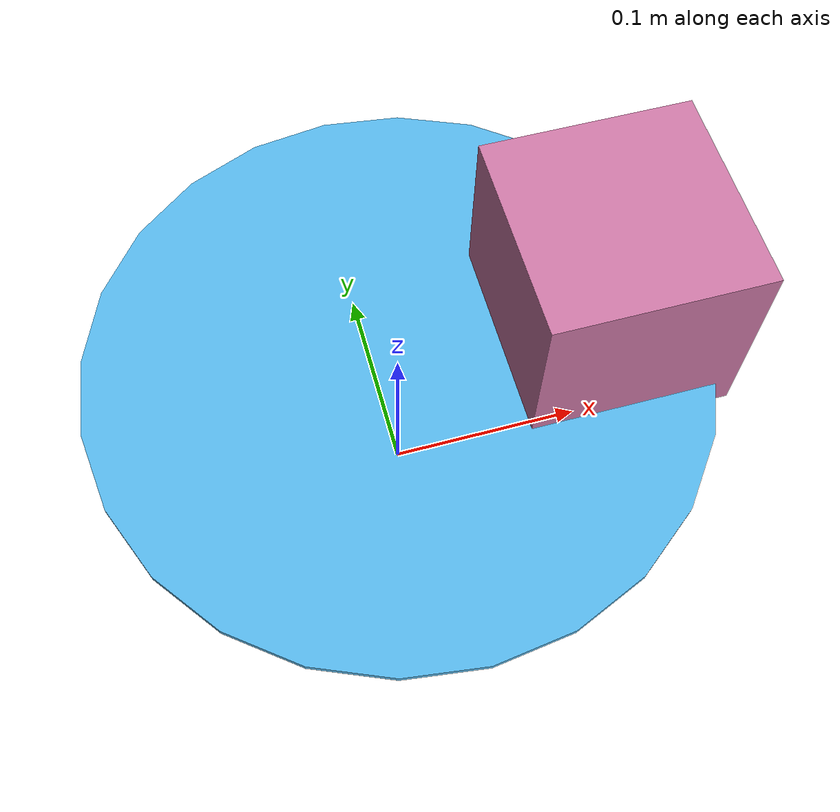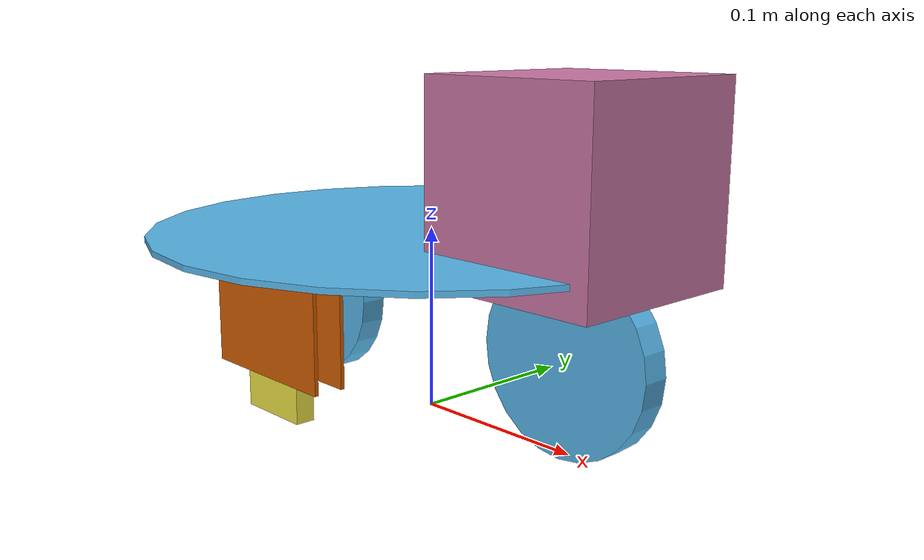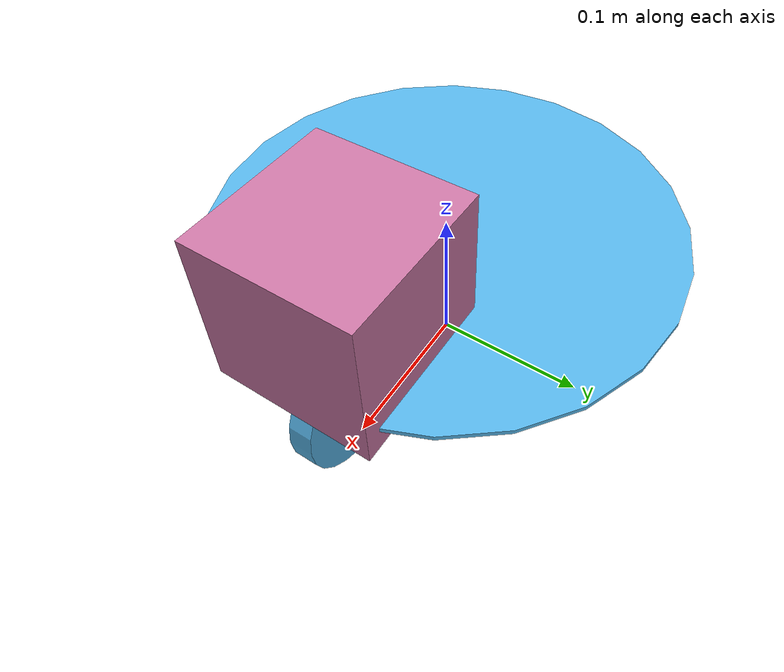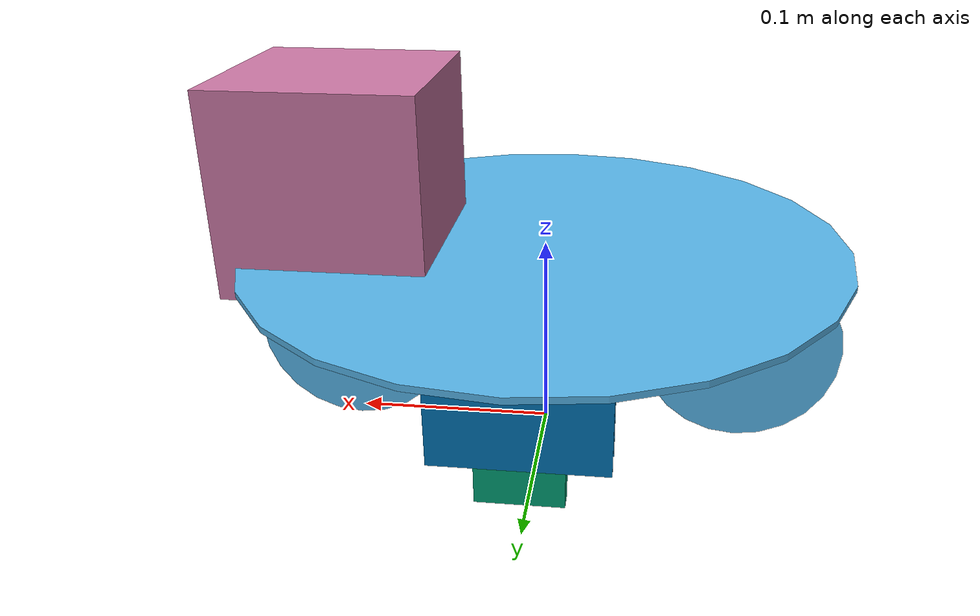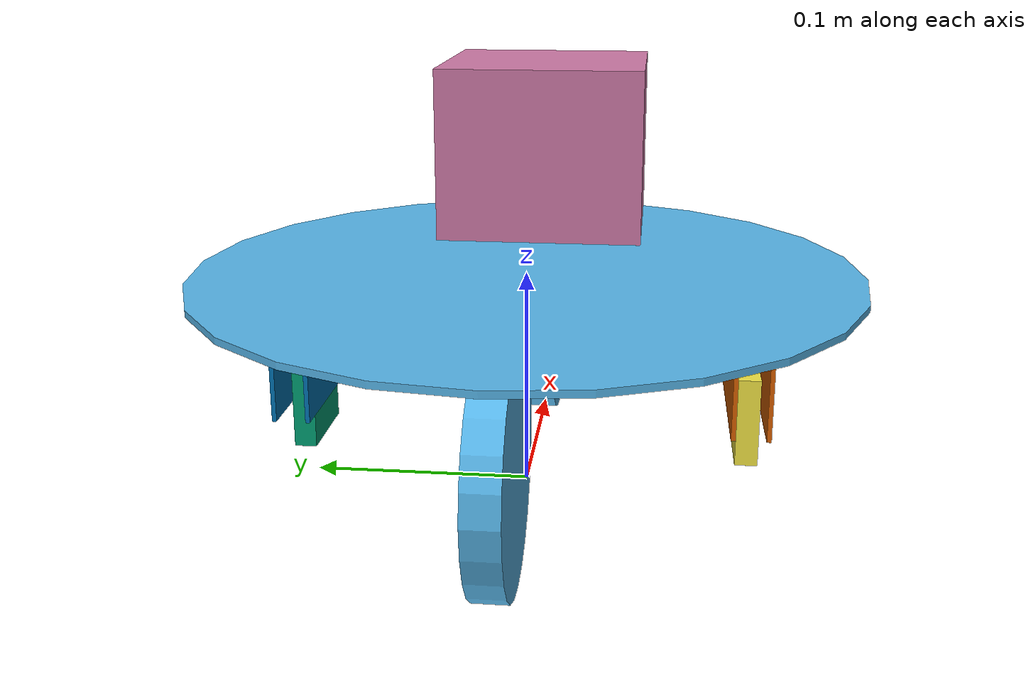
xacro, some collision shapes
<?xml version="1.0"?>
<robot name="bookle" xmlns:xacro="http://www.ros.org/wiki/xacro">

	<!-- Constants for robot dimensions -->
	<xacro:property name="PI" value="3.1415926535897931"/>

	<!-- Import all Gazebo-customization elements, including Gazebo colors -->
	<xacro:include filename="$(find bookle_description)/urdf/bookle.gazebo" />

	<link name="base_footprint">
		<collision name="base_footprint_collision">
			<origin xyz="0 0 0"  rpy="0 0 0" />
			<geometry>
				<box size="0.001 0.001 0.001" />
			</geometry>
		</collision>

		<visual name="base_footprint_visual">
			<origin xyz="0 0 0" rpy="0 0 0" />
			<geometry>
				<box size="0.001 0.001 0.001" />
			</geometry>
		</visual>

	</link>

	<link name="base_link">
		<collision name="base_link_collision">
			<origin xyz="0 0 0.1" rpy="0 0 0" />
			<geometry>
				<cylinder radius="0.15" length="0.003" />
			</geometry>
		</collision>

		<visual name="base_link_visual">
			<origin xyz="0 0 0.1" rpy="0 0 0" />
			<geometry>
				<cylinder radius="0.15" length="0.003" />
			</geometry>
		</visual>

		<collision name="front_caster_collision">
			<origin xyz="0.1 0 0.05" rpy="0 1.5707 1.5707" />
			<geometry>
				<cylinder radius="0.05" length="0.015" />
			</geometry>
		</collision>

		<visual name="front_caster_visual">
			<origin xyz="0.1 0 0.05" rpy="0 1.5707 1.5707" />
			<geometry>
				<cylinder radius="0.05" length="0.015" />
			</geometry>
		</visual>

		<collision name="back_caster_collision">
			<origin xyz="-0.1 0 0.05" rpy="0 1.5707 1.5707" />
			<geometry>
				<cylinder radius="0.05" length="0.015" />
			</geometry>
		</collision>

		<visual name="back_caster_visual">
			<origin xyz="-0.1 0 0.05" rpy="0 1.5707 1.5707" />
			<geometry>
				<cylinder radius="0.05" length="0.015" />
			</geometry>
		</visual>

		<inertial>
			<origin xyz="0 0 .1" rpy="0 0 0" />
			<mass value="0.5" />
			<inertia ixx="1.0" ixy="0.0" ixz="0.0" iyy="1.0" iyz="0.0" izz="1.0" />
		</inertial>
	</link>

	<link name="left_wheel">
		<collision name="left_wheel_collision">
			<origin xyz="0 0 0" rpy="0 1.5707 1.5707" />
			<geometry>
				<box size="0.04 0.04 0.01" />
			</geometry>
		</collision>
		<visual name="left_wheel_visual">
			<origin xyz="0 0 0" rpy="0 1.5707 1.5707" />
			<geometry>
				<box size="0.04 0.04 0.01" />
			</geometry>
		</visual>

		<inertial>
			<mass value="1" />
			<origin xyz="0 0 0" rpy="0 0 0"/>
			<inertia ixx="1" ixy="0" ixz="0" iyy="1" iyz="0" izz="1" />
		</inertial>
	</link>

	<link name="right_wheel">
		<collision name="right_wheel_collision">
			<origin xyz="0 0 0" rpy="0 1.5707 1.5707" />
			<geometry>
				<box size="0.04 0.04 0.01" />
			</geometry>
		</collision>
		<visual name="right_wheel_visual">
			<origin xyz="0 0 0" rpy="0 1.5707 1.5707" />
			<geometry>
				<box size="0.04 0.04 0.01" />
			</geometry>
		</visual>

		<inertial>
			<mass value="1" />
			<origin xyz="0 0 0" rpy="0 0 0"/>
			<inertia ixx="1" ixy="0" ixz="0" iyy="1" iyz="0" izz="1" />
		</inertial>
	</link>

	<link name="left_frame">
		<collision name="left_frame1_collision">
			<origin xyz="0 0.0075 0" rpy="0 0 0" />
			<geometry>
				<box size=".08 .002 .06" />
			</geometry>
		</collision>
		<visual name="left_frame1_visual">
			<origin xyz="0 0.0075 0" rpy="0 0 0" />
			<geometry>
				<box size=".08 .002 .06" />
			</geometry>
		</visual>

		<collision name="left_frame2_collision">
			<origin xya="0 -0.0075 0" rpy="0 0 0"/>
			<geometry>
				<box size=".08 .002 .06" />
			</geometry>
		</collision>
		<visual name="left_frame2_visual">
			<origin xyz="0 -0.0075 0" rpy="0 0 0" />
			<geometry>
				<box size=".08 .002 .06" />
			</geometry>
		</visual>

		<inertial>
			<origin xyz="0 0 0" rpy="0 0 0" />
			<mass value="1" />
			<inertia ixx="1.0" ixy="0.0" ixz="0.0" iyy="1.0" iyz="0.0" izz="1.0" />
		</inertial>
	</link>

	<link name="right_frame">
		<collision name="right_frame1_collision">
			<origin xyz="0 .0075 0" rpy="0 0 0" />
			<geometry>
				<box size=".08 .002 .06" />
			</geometry>
		</collision>
		<visual name="right_frame1_visual">
			<origin xyz="0 .0075 0" rpy="0 0 0" />
			<geometry>
				<box size=".08 .002 .06" />
			</geometry>
		</visual>

		<collision name="right_frame2_collision">
			<origin xyz="0 -0.0075 0" rpy="0 0 0" />
			<geometry>
				<box size=".08 .002 .06" />
			</geometry>
		</collision>
		<visual name="right_frame2_visual">
			<origin xyz="0 -0.0075 0" rpy="0 0 0" />
			<geometry>
				<box size=".08 .002 .06" />
			</geometry>
		</visual>

		<inertial>
			<origin xyz="0 0 0" rpy="0 0 0" />
			<mass value="1" />
			<inertia ixx="1.0" ixy="0.0" ixz="0.0" iyy="1.0" iyz="0.0" izz="1.0" />
		</inertial>
	</link>

	<joint type="fixed" name="base_footprint_joint">
		<origin xyz="0 0 0" rpy="0 0 0" />
		<child link="base_link" />
		<parent link="base_footprint" />
	</joint>

	<joint type="continuous" name="left_wheel_joint">
		<origin xyz="0 0 -0.03" rpy="0 0 0" />
		<child link="left_wheel" />
		<parent link="left_frame" />
		<axis xyz="0 1 0" />
		<dynamics damping="0.1" friction="0.1"/>
		<limit effort="100" velocity="100"/>
	</joint>

	<joint type="continuous" name="right_wheel_joint">
		<origin xyz="0 0 -0.03" rpy="0 0 0" />
		<child link="right_wheel" />
		<parent link="right_frame" />
		<axis xyz="0 1 0" />
		<dynamics damping="0.1" friction="0.2"/>
		<limit effort="100" velocity="100"/>
	</joint>

	<joint type="fixed" name="left_frame_joint">
		<origin xyz="0 0.1 0.07" rpy="0 0 0" />
		<child link="left_frame" />
		<parent link="base_link" />
		<axis xyz="1 0 0" />
		<dynamics damping="0.1" friction="0.2"/>
	</joint>

	<joint type="fixed" name="right_frame_joint">
		<origin xyz="0 -0.1 0.07" rpy="0 0 0" />
		<child link="right_frame" />
		<parent link="base_link" />
		<axis xyz="1 0 0" />
		<dynamics damping="0.1" friction="0.1"/>
	</joint>

	<transmission name="left_wheel_trans" type="SimpleTransmission">
		<type>transmission_interface/SimpleTransmission</type>
		<actuator name="left_wheel_motor">
			<mechanicalReduction>1</mechanicalReduction>
		</actuator>
		<joint name="left_wheel_joint">
			<hardwareInterface>VelocityJointInterface</hardwareInterface>
		</joint>
	</transmission>

	<transmission name="right_wheel_trans" type="SimpleTransmission">
		<type>transmission_interface/SimpleTransmission</type>
		<actuator name="right_wheel_motor">
			<mechanicalReduction>1</mechanicalReduction>
		</actuator>
		<joint name="right_wheel_joint">
			<hardwareInterface>VelocityJointInterface</hardwareInterface>
		</joint>
	</transmission>

	<joint name="hokuyo_joint" type="fixed">
		<axis xyz="0 0 1" />
		<origin xyz="0.1 0 0.135" rpy="0 0 0"/>
		<parent link="base_link"/>
		<child link="base_laser"/>
	</joint>

	<!-- Hokuyo Laser -->
	<link name="base_laser">
		<collision>
			<origin xyz="0 0 0" rpy="0 0 0"/>
			<geometry>
				<box size="0.1 0.1 0.1"/>
			</geometry>
		</collision>

		<visual>
			<origin xyz="0 0 0" rpy="0 0 0"/>
			<geometry>
				<mesh filename="package://bookle_description/meshes/hokuyo.dae"/>
			</geometry>
		</visual>

		<inertial>
			<mass value="1e-5" />
			<origin xyz="0 0 0" rpy="0 0 0"/>
			<inertia ixx="1e-6" ixy="0" ixz="0" iyy="1e-6" iyz="0" izz="1e-6" />
		</inertial>
	</link>

</robot>
